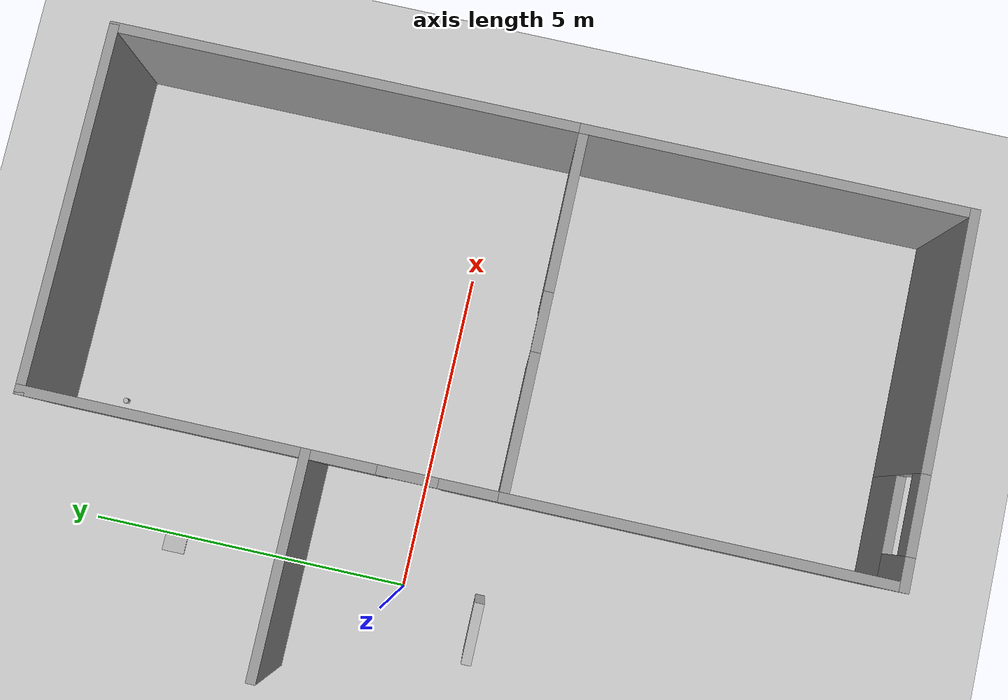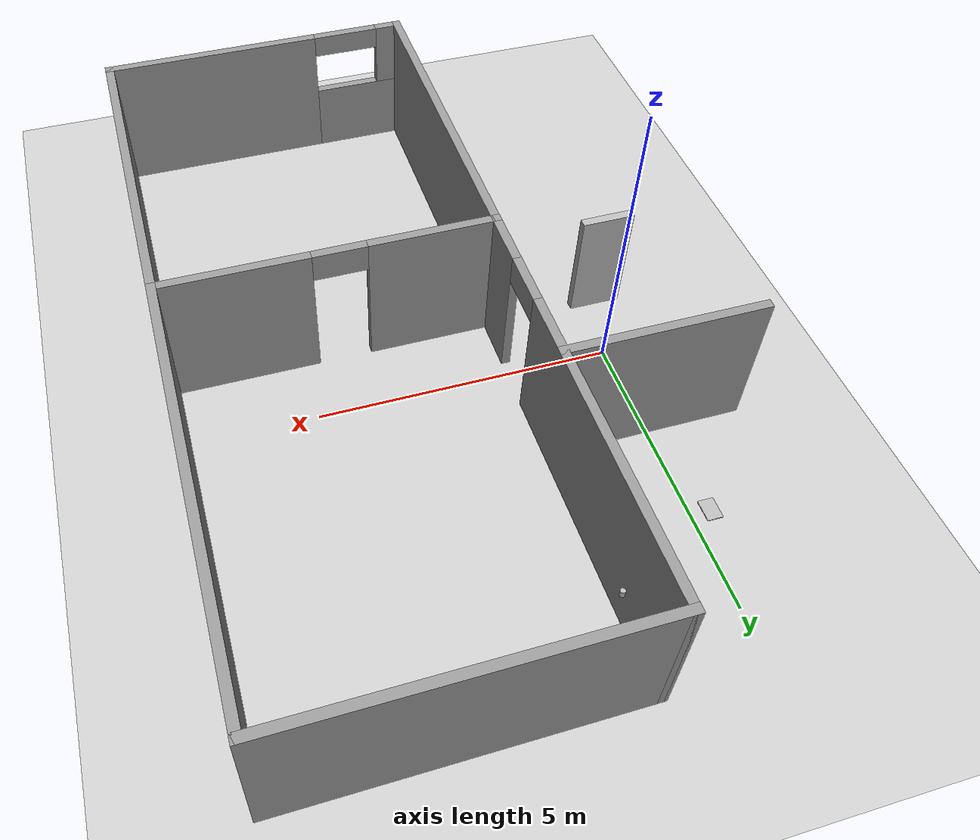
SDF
<sdf version="1.6">
 <world name="default">
  <model name="ground_plane">
   <static>1</static>
   <link name="link">
    <collision name="collision">
     <geometry><plane><normal>0 0 1</normal><size>100 100</size></plane></geometry>
     <surface><friction><ode><mu>100</mu><mu2>50</mu2></ode></friction></surface>
    </collision>
    <visual name="visual">
     <cast_shadows>0</cast_shadows>
     <geometry><plane><normal>0 0 1</normal><size>100 100</size></plane></geometry>
     <material>
      <script><uri>file://media/materials/scripts/gazebo.material</uri><name>Gazebo/Grey</name></script>
     </material>
    </visual>
   </link>
  </model>
  <model name="House">
   <link name="Wall_100">
    <pose>0.885 2.25 0 0 -0 0</pose>
    <visual name="Wall_100_Visual">
     <pose>0 0 1.25 0 -0 0</pose>
     <geometry><box><size>3.38 0.15 2.5</size></box></geometry>
     <material>
      <script><uri>file://media/materials/scripts/gazebo.material</uri><name>Gazebo/Grey</name></script>
      <ambient>1 1 1 1</ambient>
      <shader type="pixel"/>
      <diffuse>0.7 0.7 0.7 1</diffuse>
      <specular>0.01 0.01 0.01 1</specular>
      <emissive>0 0 0 1</emissive>
     </material>
     <meta><layer>0</layer></meta>
    </visual>
    <collision name="Wall_100_Collision">
     <pose>0 0 1.25 0 -0 0</pose>
     <geometry><box><size>3.38 0.15 2.5</size></box></geometry>
     <surface>
      <friction>
       <ode><mu>1</mu><mu2>1</mu2><fdir1>0 0 0</fdir1><slip1>0</slip1><slip2>0</slip2></ode>
       <torsional>
        <coefficient>1</coefficient>
        <patch_radius>0</patch_radius>
        <surface_radius>0</surface_radius>
        <use_patch_radius>1</use_patch_radius>
        <ode><slip>0</slip></ode>
       </torsional>
      </friction>
      <bounce><restitution_coefficient>0</restitution_coefficient><threshold>1e+06</threshold></bounce>
      <contact>
       <collide_without_contact>0</collide_without_contact>
       <collide_without_contact_bitmask>1</collide_without_contact_bitmask>
       <collide_bitmask>1</collide_bitmask>
       <ode>
        <soft_cfm>0</soft_cfm>
        <soft_erp>0.2</soft_erp>
        <kp>1e+13</kp>
        <kd>1</kd>
        <max_vel>0.01</max_vel>
        <min_depth>0</min_depth>
       </ode>
       <bullet>
        <split_impulse>1</split_impulse>
        <split_impulse_penetration_threshold>-0.01</split_impulse_penetration_threshold>
        <soft_cfm>0</soft_cfm>
        <soft_erp>0.2</soft_erp>
        <kp>1e+13</kp>
        <kd>1</kd>
       </bullet>
      </contact>
     </surface>
    </collision>
   </link>
   <link name="Wall_79">
    <pose>5.25 6.45 0 0 -0 0</pose>
    <visual name="Wall_79_Visual">
     <pose>0 0 1.25 0 -0 0</pose>
     <geometry><box><size>5.65 0.15 2.5</size></box></geometry>
     <material>
      <script><uri>file://media/materials/scripts/gazebo.material</uri><name>Gazebo/Grey</name></script>
      <ambient>1 1 1 1</ambient>
      <shader type="pixel"/>
      <diffuse>0.7 0.7 0.7 1</diffuse>
      <specular>0.01 0.01 0.01 1</specular>
      <emissive>0 0 0 1</emissive>
     </material>
     <meta><layer>0</layer></meta>
    </visual>
    <collision name="Wall_79_Collision">
     <pose>0 0 1.25 0 -0 0</pose>
     <geometry><box><size>5.65 0.15 2.5</size></box></geometry>
     <surface>
      <friction>
       <ode><mu>1</mu><mu2>1</mu2><fdir1>0 0 0</fdir1><slip1>0</slip1><slip2>0</slip2></ode>
       <torsional>
        <coefficient>1</coefficient>
        <patch_radius>0</patch_radius>
        <surface_radius>0</surface_radius>
        <use_patch_radius>1</use_patch_radius>
        <ode><slip>0</slip></ode>
       </torsional>
      </friction>
      <bounce><restitution_coefficient>0</restitution_coefficient><threshold>1e+06</threshold></bounce>
      <contact>
       <collide_without_contact>0</collide_without_contact>
       <collide_without_contact_bitmask>1</collide_without_contact_bitmask>
       <collide_bitmask>1</collide_bitmask>
       <ode>
        <soft_cfm>0</soft_cfm>
        <soft_erp>0.2</soft_erp>
        <kp>1e+13</kp>
        <kd>1</kd>
        <max_vel>0.01</max_vel>
        <min_depth>0</min_depth>
       </ode>
       <bullet>
        <split_impulse>1</split_impulse>
        <split_impulse_penetration_threshold>-0.01</split_impulse_penetration_threshold>
        <soft_cfm>0</soft_cfm>
        <soft_erp>0.2</soft_erp>
        <kp>1e+13</kp>
        <kd>1</kd>
       </bullet>
      </contact>
     </surface>
    </collision>
   </link>
   <link name="Wall_81">
    <pose>8 2.9 0 0 0 -1.5708</pose>
    <visual name="Wall_81_Visual">
     <pose>0 0 1.25 0 -0 0</pose>
     <geometry><box><size>7.25 0.15 2.5</size></box></geometry>
     <material>
      <script><uri>file://media/materials/scripts/gazebo.material</uri><name>Gazebo/Grey</name></script>
      <ambient>1 1 1 1</ambient>
      <shader type="pixel"/>
      <diffuse>0.7 0.7 0.7 1</diffuse>
      <specular>0.01 0.01 0.01 1</specular>
      <emissive>0 0 0 1</emissive>
     </material>
     <meta><layer>0</layer></meta>
    </visual>
    <collision name="Wall_81_Collision">
     <pose>0 0 1.25 0 -0 0</pose>
     <geometry><box><size>7.25 0.15 2.5</size></box></geometry>
     <surface>
      <friction>
       <ode><mu>1</mu><mu2>1</mu2><fdir1>0 0 0</fdir1><slip1>0</slip1><slip2>0</slip2></ode>
       <torsional>
        <coefficient>1</coefficient>
        <patch_radius>0</patch_radius>
        <surface_radius>0</surface_radius>
        <use_patch_radius>1</use_patch_radius>
        <ode><slip>0</slip></ode>
       </torsional>
      </friction>
      <bounce><restitution_coefficient>0</restitution_coefficient><threshold>1e+06</threshold></bounce>
      <contact>
       <collide_without_contact>0</collide_without_contact>
       <collide_without_contact_bitmask>1</collide_without_contact_bitmask>
       <collide_bitmask>1</collide_bitmask>
       <ode>
        <soft_cfm>0</soft_cfm>
        <soft_erp>0.2</soft_erp>
        <kp>1e+13</kp>
        <kd>1</kd>
        <max_vel>0.01</max_vel>
        <min_depth>0</min_depth>
       </ode>
       <bullet>
        <split_impulse>1</split_impulse>
        <split_impulse_penetration_threshold>-0.01</split_impulse_penetration_threshold>
        <soft_cfm>0</soft_cfm>
        <soft_erp>0.2</soft_erp>
        <kp>1e+13</kp>
        <kd>1</kd>
       </bullet>
      </contact>
     </surface>
    </collision>
   </link>
   <link name="Wall_83">
    <pose>8 -3.55 0 0 0 -1.5708</pose>
    <visual name="Wall_83_Visual">
     <pose>0 0 1.25 0 -0 0</pose>
     <geometry><box><size>5.95 0.15 2.5</size></box></geometry>
     <material>
      <script><uri>file://media/materials/scripts/gazebo.material</uri><name>Gazebo/Grey</name></script>
      <ambient>1 1 1 1</ambient>
      <shader type="pixel"/>
      <diffuse>0.7 0.7 0.7 1</diffuse>
      <specular>0.01 0.01 0.01 1</specular>
      <emissive>0 0 0 1</emissive>
     </material>
     <meta><layer>0</layer></meta>
    </visual>
    <collision name="Wall_83_Collision">
     <pose>0 0 1.25 0 -0 0</pose>
     <geometry><box><size>5.95 0.15 2.5</size></box></geometry>
     <surface>
      <friction>
       <ode><mu>1</mu><mu2>1</mu2><fdir1>0 0 0</fdir1><slip1>0</slip1><slip2>0</slip2></ode>
       <torsional>
        <coefficient>1</coefficient>
        <patch_radius>0</patch_radius>
        <surface_radius>0</surface_radius>
        <use_patch_radius>1</use_patch_radius>
        <ode><slip>0</slip></ode>
       </torsional>
      </friction>
      <bounce><restitution_coefficient>0</restitution_coefficient><threshold>1e+06</threshold></bounce>
      <contact>
       <collide_without_contact>0</collide_without_contact>
       <collide_without_contact_bitmask>1</collide_without_contact_bitmask>
       <collide_bitmask>1</collide_bitmask>
       <ode>
        <soft_cfm>0</soft_cfm>
        <soft_erp>0.2</soft_erp>
        <kp>1e+13</kp>
        <kd>1</kd>
        <max_vel>0.01</max_vel>
        <min_depth>0</min_depth>
       </ode>
       <bullet>
        <split_impulse>1</split_impulse>
        <split_impulse_penetration_threshold>-0.01</split_impulse_penetration_threshold>
        <soft_cfm>0</soft_cfm>
        <soft_erp>0.2</soft_erp>
        <kp>1e+13</kp>
        <kd>1</kd>
       </bullet>
      </contact>
     </surface>
    </collision>
   </link>
   <link name="Wall_85">
    <pose>5.25 -6.45 0 0 -0 3.14159</pose>
    <visual name="Wall_85_Visual_3">
     <pose>1.71326 0 2.3 0 -0 0</pose>
     <geometry><box><size>1.2 0.15 0.4</size></box></geometry>
     <material>
      <script><uri>file://media/materials/scripts/gazebo.material</uri><name>Gazebo/Grey</name></script>
      <ambient>1 1 1 1</ambient>
      <shader type="pixel"/>
      <diffuse>0.7 0.7 0.7 1</diffuse>
      <specular>0.01 0.01 0.01 1</specular>
      <emissive>0 0 0 1</emissive>
     </material>
     <meta><layer>0</layer></meta>
    </visual>
    <visual name="Wall_85_Visual_0">
     <pose>-0.855868 0 1.25 0 -0 0</pose>
     <geometry><box><size>3.93826 0.15 2.5</size></box></geometry>
     <material>
      <script><uri>file://media/materials/scripts/gazebo.material</uri><name>Gazebo/Grey</name></script>
      <ambient>1 1 1 1</ambient>
      <shader type="pixel"/>
      <diffuse>0.7 0.7 0.7 1</diffuse>
      <specular>0.01 0.01 0.01 1</specular>
      <emissive>0 0 0 1</emissive>
     </material>
     <meta><layer>0</layer></meta>
    </visual>
    <visual name="Wall_85_Visual_1">
     <pose>1.96913 0 0.65 0 -0 0</pose>
     <geometry><box><size>1.71174 0.15 1.3</size></box></geometry>
     <material>
      <script><uri>file://media/materials/scripts/gazebo.material</uri><name>Gazebo/Grey</name></script>
      <ambient>1 1 1 1</ambient>
      <shader type="pixel"/>
      <diffuse>0.7 0.7 0.7 1</diffuse>
      <specular>0.01 0.01 0.01 1</specular>
      <emissive>0 0 0 1</emissive>
     </material>
     <meta><layer>0</layer></meta>
    </visual>
    <visual name="Wall_85_Visual_2">
     <pose>2.56913 0 1.9 0 -0 0</pose>
     <geometry><box><size>0.511736 0.15 1.2</size></box></geometry>
     <material>
      <script><uri>file://media/materials/scripts/gazebo.material</uri><name>Gazebo/Grey</name></script>
      <ambient>1 1 1 1</ambient>
      <shader type="pixel"/>
      <diffuse>0.7 0.7 0.7 1</diffuse>
      <specular>0.01 0.01 0.01 1</specular>
      <emissive>0 0 0 1</emissive>
     </material>
     <meta><layer>0</layer></meta>
    </visual>
    <collision name="Wall_85_Collision_0">
     <pose>-0.855868 0 1.25 0 -0 0</pose>
     <geometry><box><size>3.93826 0.15 2.5</size></box></geometry>
     <surface>
      <friction>
       <ode><mu>1</mu><mu2>1</mu2><fdir1>0 0 0</fdir1><slip1>0</slip1><slip2>0</slip2></ode>
       <torsional>
        <coefficient>1</coefficient>
        <patch_radius>0</patch_radius>
        <surface_radius>0</surface_radius>
        <use_patch_radius>1</use_patch_radius>
        <ode><slip>0</slip></ode>
       </torsional>
      </friction>
      <bounce><restitution_coefficient>0</restitution_coefficient><threshold>1e+06</threshold></bounce>
      <contact>
       <collide_without_contact>0</collide_without_contact>
       <collide_without_contact_bitmask>1</collide_without_contact_bitmask>
       <collide_bitmask>1</collide_bitmask>
       <ode>
        <soft_cfm>0</soft_cfm>
        <soft_erp>0.2</soft_erp>
        <kp>1e+13</kp>
        <kd>1</kd>
        <max_vel>0.01</max_vel>
        <min_depth>0</min_depth>
       </ode>
       <bullet>
        <split_impulse>1</split_impulse>
        <split_impulse_penetration_threshold>-0.01</split_impulse_penetration_threshold>
        <soft_cfm>0</soft_cfm>
        <soft_erp>0.2</soft_erp>
        <kp>1e+13</kp>
        <kd>1</kd>
       </bullet>
      </contact>
     </surface>
    </collision>
    <collision name="Wall_85_Collision_1">
     <pose>1.96913 0 0.65 0 -0 0</pose>
     <geometry><box><size>1.71174 0.15 1.3</size></box></geometry>
     <surface>
      <friction>
       <ode><mu>1</mu><mu2>1</mu2><fdir1>0 0 0</fdir1><slip1>0</slip1><slip2>0</slip2></ode>
       <torsional>
        <coefficient>1</coefficient>
        <patch_radius>0</patch_radius>
        <surface_radius>0</surface_radius>
        <use_patch_radius>1</use_patch_radius>
        <ode><slip>0</slip></ode>
       </torsional>
      </friction>
      <bounce><restitution_coefficient>0</restitution_coefficient><threshold>1e+06</threshold></bounce>
      <contact>
       <collide_without_contact>0</collide_without_contact>
       <collide_without_contact_bitmask>1</collide_without_contact_bitmask>
       <collide_bitmask>1</collide_bitmask>
       <ode>
        <soft_cfm>0</soft_cfm>
        <soft_erp>0.2</soft_erp>
        <kp>1e+13</kp>
        <kd>1</kd>
        <max_vel>0.01</max_vel>
        <min_depth>0</min_depth>
       </ode>
       <bullet>
        <split_impulse>1</split_impulse>
        <split_impulse_penetration_threshold>-0.01</split_impulse_penetration_threshold>
        <soft_cfm>0</soft_cfm>
        <soft_erp>0.2</soft_erp>
        <kp>1e+13</kp>
        <kd>1</kd>
       </bullet>
      </contact>
     </surface>
    </collision>
    <collision name="Wall_85_Collision_2">
     <pose>2.56913 0 1.9 0 -0 0</pose>
     <geometry><box><size>0.511736 0.15 1.2</size></box></geometry>
     <surface>
      <friction>
       <ode><mu>1</mu><mu2>1</mu2><fdir1>0 0 0</fdir1><slip1>0</slip1><slip2>0</slip2></ode>
       <torsional>
        <coefficient>1</coefficient>
        <patch_radius>0</patch_radius>
        <surface_radius>0</surface_radius>
        <use_patch_radius>1</use_patch_radius>
        <ode><slip>0</slip></ode>
       </torsional>
      </friction>
      <bounce><restitution_coefficient>0</restitution_coefficient><threshold>1e+06</threshold></bounce>
      <contact>
       <collide_without_contact>0</collide_without_contact>
       <collide_without_contact_bitmask>1</collide_without_contact_bitmask>
       <collide_bitmask>1</collide_bitmask>
       <ode>
        <soft_cfm>0</soft_cfm>
        <soft_erp>0.2</soft_erp>
        <kp>1e+13</kp>
        <kd>1</kd>
        <max_vel>0.01</max_vel>
        <min_depth>0</min_depth>
       </ode>
       <bullet>
        <split_impulse>1</split_impulse>
        <split_impulse_penetration_threshold>-0.01</split_impulse_penetration_threshold>
        <soft_cfm>0</soft_cfm>
        <soft_erp>0.2</soft_erp>
        <kp>1e+13</kp>
        <kd>1</kd>
       </bullet>
      </contact>
     </surface>
    </collision>
    <collision name="Wall_85_Collision_3">
     <pose>1.71326 0 2.3 0 -0 0</pose>
     <geometry><box><size>1.2 0.15 0.4</size></box></geometry>
     <surface>
      <friction>
       <ode><mu>1</mu><mu2>1</mu2><fdir1>0 0 0</fdir1><slip1>0</slip1><slip2>0</slip2></ode>
       <torsional>
        <coefficient>1</coefficient>
        <patch_radius>0</patch_radius>
        <surface_radius>0</surface_radius>
        <use_patch_radius>1</use_patch_radius>
        <ode><slip>0</slip></ode>
       </torsional>
      </friction>
      <bounce><restitution_coefficient>0</restitution_coefficient><threshold>1e+06</threshold></bounce>
      <contact>
       <collide_without_contact>0</collide_without_contact>
       <collide_without_contact_bitmask>1</collide_without_contact_bitmask>
       <collide_bitmask>1</collide_bitmask>
       <ode>
        <soft_cfm>0</soft_cfm>
        <soft_erp>0.2</soft_erp>
        <kp>1e+13</kp>
        <kd>1</kd>
        <max_vel>0.01</max_vel>
        <min_depth>0</min_depth>
       </ode>
       <bullet>
        <split_impulse>1</split_impulse>
        <split_impulse_penetration_threshold>-0.01</split_impulse_penetration_threshold>
        <soft_cfm>0</soft_cfm>
        <soft_erp>0.2</soft_erp>
        <kp>1e+13</kp>
        <kd>1</kd>
       </bullet>
      </contact>
     </surface>
    </collision>
   </link>
   <link name="Wall_87">
    <pose>2.5 -3.55 0 0 -0 1.5708</pose>
    <visual name="Wall_87_Visual">
     <pose>0 0 1.25 0 -0 0</pose>
     <geometry><box><size>5.95 0.15 2.5</size></box></geometry>
     <material>
      <script><uri>file://media/materials/scripts/gazebo.material</uri><name>Gazebo/Grey</name></script>
      <ambient>1 1 1 1</ambient>
      <shader type="pixel"/>
      <diffuse>0.7 0.7 0.7 1</diffuse>
      <specular>0.01 0.01 0.01 1</specular>
      <emissive>0 0 0 1</emissive>
     </material>
     <meta><layer>0</layer></meta>
    </visual>
    <collision name="Wall_87_Collision">
     <pose>0 0 1.25 0 -0 0</pose>
     <geometry><box><size>5.95 0.15 2.5</size></box></geometry>
     <surface>
      <friction>
       <ode><mu>1</mu><mu2>1</mu2><fdir1>0 0 0</fdir1><slip1>0</slip1><slip2>0</slip2></ode>
       <torsional>
        <coefficient>1</coefficient>
        <patch_radius>0</patch_radius>
        <surface_radius>0</surface_radius>
        <use_patch_radius>1</use_patch_radius>
        <ode><slip>0</slip></ode>
       </torsional>
      </friction>
      <bounce><restitution_coefficient>0</restitution_coefficient><threshold>1e+06</threshold></bounce>
      <contact>
       <collide_without_contact>0</collide_without_contact>
       <collide_without_contact_bitmask>1</collide_without_contact_bitmask>
       <collide_bitmask>1</collide_bitmask>
       <ode>
        <soft_cfm>0</soft_cfm>
        <soft_erp>0.2</soft_erp>
        <kp>1e+13</kp>
        <kd>1</kd>
        <max_vel>0.01</max_vel>
        <min_depth>0</min_depth>
       </ode>
       <bullet>
        <split_impulse>1</split_impulse>
        <split_impulse_penetration_threshold>-0.01</split_impulse_penetration_threshold>
        <soft_cfm>0</soft_cfm>
        <soft_erp>0.2</soft_erp>
        <kp>1e+13</kp>
        <kd>1</kd>
       </bullet>
      </contact>
     </surface>
    </collision>
   </link>
   <link name="Wall_89">
    <pose>5.25 -0.65 0 0 -0 0</pose>
    <visual name="Wall_89_Visual_0">
     <pose>-1.72046 0 1.25 0 -0 0</pose>
     <geometry><box><size>2.20908 0.15 2.5</size></box></geometry>
     <material>
      <script><uri>file://media/materials/scripts/gazebo.material</uri><name>Gazebo/Grey</name></script>
      <ambient>1 1 1 1</ambient>
      <shader type="pixel"/>
      <diffuse>0.7 0.7 0.7 1</diffuse>
      <specular>0.01 0.01 0.01 1</specular>
      <emissive>0 0 0 1</emissive>
     </material>
     <meta><layer>0</layer></meta>
    </visual>
    <visual name="Wall_89_Visual_1">
     <pose>1.55454 0 1.25 0 -0 0</pose>
     <geometry><box><size>2.54092 0.15 2.5</size></box></geometry>
     <material>
      <script><uri>file://media/materials/scripts/gazebo.material</uri><name>Gazebo/Grey</name></script>
      <ambient>1 1 1 1</ambient>
      <shader type="pixel"/>
      <diffuse>0.7 0.7 0.7 1</diffuse>
      <specular>0.01 0.01 0.01 1</specular>
      <emissive>0 0 0 1</emissive>
     </material>
     <meta><layer>0</layer></meta>
    </visual>
    <visual name="Wall_89_Visual_2">
     <pose>-0.165924 0 2.25 0 -0 0</pose>
     <geometry><box><size>0.9 0.15 0.5</size></box></geometry>
     <material>
      <script><uri>file://media/materials/scripts/gazebo.material</uri><name>Gazebo/Grey</name></script>
      <ambient>1 1 1 1</ambient>
      <shader type="pixel"/>
      <diffuse>0.7 0.7 0.7 1</diffuse>
      <specular>0.01 0.01 0.01 1</specular>
      <emissive>0 0 0 1</emissive>
     </material>
     <meta><layer>0</layer></meta>
    </visual>
    <collision name="Wall_89_Collision_0">
     <pose>-1.72046 0 1.25 0 -0 0</pose>
     <geometry><box><size>2.20908 0.15 2.5</size></box></geometry>
     <surface>
      <friction>
       <ode><mu>1</mu><mu2>1</mu2><fdir1>0 0 0</fdir1><slip1>0</slip1><slip2>0</slip2></ode>
       <torsional>
        <coefficient>1</coefficient>
        <patch_radius>0</patch_radius>
        <surface_radius>0</surface_radius>
        <use_patch_radius>1</use_patch_radius>
        <ode><slip>0</slip></ode>
       </torsional>
      </friction>
      <bounce><restitution_coefficient>0</restitution_coefficient><threshold>1e+06</threshold></bounce>
      <contact>
       <collide_without_contact>0</collide_without_contact>
       <collide_without_contact_bitmask>1</collide_without_contact_bitmask>
       <collide_bitmask>1</collide_bitmask>
       <ode>
        <soft_cfm>0</soft_cfm>
        <soft_erp>0.2</soft_erp>
        <kp>1e+13</kp>
        <kd>1</kd>
        <max_vel>0.01</max_vel>
        <min_depth>0</min_depth>
       </ode>
       <bullet>
        <split_impulse>1</split_impulse>
        <split_impulse_penetration_threshold>-0.01</split_impulse_penetration_threshold>
        <soft_cfm>0</soft_cfm>
        <soft_erp>0.2</soft_erp>
        <kp>1e+13</kp>
        <kd>1</kd>
       </bullet>
      </contact>
     </surface>
    </collision>
    <collision name="Wall_89_Collision_1">
     <pose>1.55454 0 1.25 0 -0 0</pose>
     <geometry><box><size>2.54092 0.15 2.5</size></box></geometry>
     <surface>
      <friction>
       <ode><mu>1</mu><mu2>1</mu2><fdir1>0 0 0</fdir1><slip1>0</slip1><slip2>0</slip2></ode>
       <torsional>
        <coefficient>1</coefficient>
        <patch_radius>0</patch_radius>
        <surface_radius>0</surface_radius>
        <use_patch_radius>1</use_patch_radius>
        <ode><slip>0</slip></ode>
       </torsional>
      </friction>
      <bounce><restitution_coefficient>0</restitution_coefficient><threshold>1e+06</threshold></bounce>
      <contact>
       <collide_without_contact>0</collide_without_contact>
       <collide_without_contact_bitmask>1</collide_without_contact_bitmask>
       <collide_bitmask>1</collide_bitmask>
       <ode>
        <soft_cfm>0</soft_cfm>
        <soft_erp>0.2</soft_erp>
        <kp>1e+13</kp>
        <kd>1</kd>
        <max_vel>0.01</max_vel>
        <min_depth>0</min_depth>
       </ode>
       <bullet>
        <split_impulse>1</split_impulse>
        <split_impulse_penetration_threshold>-0.01</split_impulse_penetration_threshold>
        <soft_cfm>0</soft_cfm>
        <soft_erp>0.2</soft_erp>
        <kp>1e+13</kp>
        <kd>1</kd>
       </bullet>
      </contact>
     </surface>
    </collision>
    <collision name="Wall_89_Collision_2">
     <pose>-0.165924 0 2.25 0 -0 0</pose>
     <geometry><box><size>0.9 0.15 0.5</size></box></geometry>
     <surface>
      <friction>
       <ode><mu>1</mu><mu2>1</mu2><fdir1>0 0 0</fdir1><slip1>0</slip1><slip2>0</slip2></ode>
       <torsional>
        <coefficient>1</coefficient>
        <patch_radius>0</patch_radius>
        <surface_radius>0</surface_radius>
        <use_patch_radius>1</use_patch_radius>
        <ode><slip>0</slip></ode>
       </torsional>
      </friction>
      <bounce><restitution_coefficient>0</restitution_coefficient><threshold>1e+06</threshold></bounce>
      <contact>
       <collide_without_contact>0</collide_without_contact>
       <collide_without_contact_bitmask>1</collide_without_contact_bitmask>
       <collide_bitmask>1</collide_bitmask>
       <ode>
        <soft_cfm>0</soft_cfm>
        <soft_erp>0.2</soft_erp>
        <kp>1e+13</kp>
        <kd>1</kd>
        <max_vel>0.01</max_vel>
        <min_depth>0</min_depth>
       </ode>
       <bullet>
        <split_impulse>1</split_impulse>
        <split_impulse_penetration_threshold>-0.01</split_impulse_penetration_threshold>
        <soft_cfm>0</soft_cfm>
        <soft_erp>0.2</soft_erp>
        <kp>1e+13</kp>
        <kd>1</kd>
       </bullet>
      </contact>
     </surface>
    </collision>
   </link>
   <link name="Wall_91">
    <pose>2.5 2.9 0 0 -0 1.5708</pose>
    <visual name="Wall_91_Visual_0">
     <pose>-3.11155 0 1.25 0 -0 0</pose>
     <geometry><box><size>1.0269 0.15 2.5</size></box></geometry>
     <material>
      <script><uri>file://media/materials/scripts/gazebo.material</uri><name>Gazebo/Grey</name></script>
      <ambient>1 1 1 1</ambient>
      <shader type="pixel"/>
      <diffuse>0.7 0.7 0.7 1</diffuse>
      <specular>0.01 0.01 0.01 1</specular>
      <emissive>0 0 0 1</emissive>
     </material>
     <meta><layer>0</layer></meta>
    </visual>
    <visual name="Wall_91_Visual_1">
     <pose>0.96345 0 1.25 0 -0 0</pose>
     <geometry><box><size>5.3231 0.15 2.5</size></box></geometry>
     <material>
      <script><uri>file://media/materials/scripts/gazebo.material</uri><name>Gazebo/Grey</name></script>
      <ambient>1 1 1 1</ambient>
      <shader type="pixel"/>
      <diffuse>0.7 0.7 0.7 1</diffuse>
      <specular>0.01 0.01 0.01 1</specular>
      <emissive>0 0 0 1</emissive>
     </material>
     <meta><layer>0</layer></meta>
    </visual>
    <visual name="Wall_91_Visual_2">
     <pose>-2.1481 0 2.25 0 -0 0</pose>
     <geometry><box><size>0.9 0.15 0.5</size></box></geometry>
     <material>
      <script><uri>file://media/materials/scripts/gazebo.material</uri><name>Gazebo/Grey</name></script>
      <ambient>1 1 1 1</ambient>
      <shader type="pixel"/>
      <diffuse>0.7 0.7 0.7 1</diffuse>
      <specular>0.01 0.01 0.01 1</specular>
      <emissive>0 0 0 1</emissive>
     </material>
     <meta><layer>0</layer></meta>
    </visual>
    <collision name="Wall_91_Collision_0">
     <pose>-3.11155 0 1.25 0 -0 0</pose>
     <geometry><box><size>1.0269 0.15 2.5</size></box></geometry>
     <surface>
      <friction>
       <ode><mu>1</mu><mu2>1</mu2><fdir1>0 0 0</fdir1><slip1>0</slip1><slip2>0</slip2></ode>
       <torsional>
        <coefficient>1</coefficient>
        <patch_radius>0</patch_radius>
        <surface_radius>0</surface_radius>
        <use_patch_radius>1</use_patch_radius>
        <ode><slip>0</slip></ode>
       </torsional>
      </friction>
      <bounce><restitution_coefficient>0</restitution_coefficient><threshold>1e+06</threshold></bounce>
      <contact>
       <collide_without_contact>0</collide_without_contact>
       <collide_without_contact_bitmask>1</collide_without_contact_bitmask>
       <collide_bitmask>1</collide_bitmask>
       <ode>
        <soft_cfm>0</soft_cfm>
        <soft_erp>0.2</soft_erp>
        <kp>1e+13</kp>
        <kd>1</kd>
        <max_vel>0.01</max_vel>
        <min_depth>0</min_depth>
       </ode>
       <bullet>
        <split_impulse>1</split_impulse>
        <split_impulse_penetration_threshold>-0.01</split_impulse_penetration_threshold>
        <soft_cfm>0</soft_cfm>
        <soft_erp>0.2</soft_erp>
        <kp>1e+13</kp>
        <kd>1</kd>
       </bullet>
      </contact>
     </surface>
    </collision>
    <collision name="Wall_91_Collision_2">
     <pose>-2.1481 0 2.25 0 -0 0</pose>
     <geometry><box><size>0.9 0.15 0.5</size></box></geometry>
     <surface>
      <friction>
       <ode><mu>1</mu><mu2>1</mu2><fdir1>0 0 0</fdir1><slip1>0</slip1><slip2>0</slip2></ode>
       <torsional>
        <coefficient>1</coefficient>
        <patch_radius>0</patch_radius>
        <surface_radius>0</surface_radius>
        <use_patch_radius>1</use_patch_radius>
        <ode><slip>0</slip></ode>
       </torsional>
      </friction>
      <bounce><restitution_coefficient>0</restitution_coefficient><threshold>1e+06</threshold></bounce>
      <contact>
       <collide_without_contact>0</collide_without_contact>
       <collide_without_contact_bitmask>1</collide_without_contact_bitmask>
       <collide_bitmask>1</collide_bitmask>
       <ode>
        <soft_cfm>0</soft_cfm>
        <soft_erp>0.2</soft_erp>
        <kp>1e+13</kp>
        <kd>1</kd>
        <max_vel>0.01</max_vel>
        <min_depth>0</min_depth>
       </ode>
       <bullet>
        <split_impulse>1</split_impulse>
        <split_impulse_penetration_threshold>-0.01</split_impulse_penetration_threshold>
        <soft_cfm>0</soft_cfm>
        <soft_erp>0.2</soft_erp>
        <kp>1e+13</kp>
        <kd>1</kd>
       </bullet>
      </contact>
     </surface>
    </collision>
    <collision name="Wall_91_Collision_1">
     <pose>0.96345 0 1.25 0 -0 0</pose>
     <geometry><box><size>5.3231 0.15 2.5</size></box></geometry>
     <surface>
      <friction>
       <ode><mu>1</mu><mu2>1</mu2><fdir1>0 0 0</fdir1><slip1>0</slip1><slip2>0</slip2></ode>
       <torsional>
        <coefficient>1</coefficient>
        <patch_radius>0</patch_radius>
        <surface_radius>0</surface_radius>
        <use_patch_radius>1</use_patch_radius>
        <ode><slip>0</slip></ode>
       </torsional>
      </friction>
      <bounce><restitution_coefficient>0</restitution_coefficient><threshold>1e+06</threshold></bounce>
      <contact>
       <collide_without_contact>0</collide_without_contact>
       <collide_without_contact_bitmask>1</collide_without_contact_bitmask>
       <collide_bitmask>1</collide_bitmask>
       <ode>
        <soft_cfm>0</soft_cfm>
        <soft_erp>0.2</soft_erp>
        <kp>1e+13</kp>
        <kd>1</kd>
        <max_vel>0.01</max_vel>
        <min_depth>0</min_depth>
       </ode>
       <bullet>
        <split_impulse>1</split_impulse>
        <split_impulse_penetration_threshold>-0.01</split_impulse_penetration_threshold>
        <soft_cfm>0</soft_cfm>
        <soft_erp>0.2</soft_erp>
        <kp>1e+13</kp>
        <kd>1</kd>
       </bullet>
      </contact>
     </surface>
    </collision>
   </link>
   <static>1</static>
   <pose>-0.825981 -0.56573 0 0 -0 0</pose>
  </model>
  <model name="newspaper_1">
   <link name="link_0">
    <visual name="visual">
     <geometry><box><size>0.35 0.25 0.02</size></box></geometry>
     <material>
      <script>
       <uri>model://newspaper_1/materials/scripts</uri>
       <uri>model://newspaper_1/materials/textures</uri>
       <name>newspaper_1</name>
      </script>
     </material>
    </visual>
    <collision name="collision"><geometry><box><size>0.35 0.25 0.02</size></box></geometry></collision>
   </link>
   <static>1</static>
   <pose>-0.117815 3.61344 0.455189 0 -0 1.57</pose>
  </model>
  <model name="door">
   <link name="link_0">
    <visual name="visual">
     <pose>0 0 1 0 -0 0</pose>
     <geometry><box><size>0.9 0.15 2</size></box></geometry>
     <material>
      <script>
       <uri>model://door/materials/scripts</uri>
       <uri>model://door/materials/textures</uri>
       <name>door</name>
      </script>
     </material>
    </visual>
    <collision name="collision">
     <pose>0 0 1 0 -0 0</pose>
     <geometry><box><size>0.9 0.15 2</size></box></geometry>
    </collision>
   </link>
   <static>1</static>
   <pose>-0.322221 -1.21022 0 0 -0 0</pose>
  </model>
  <model name="coffee_box">
   <link name="link_0">
    <visual name="visual">
     <pose>0 0 0.06 0 -0 0</pose>
     <geometry><cylinder><radius>0.04</radius><length>0.12</length></cylinder></geometry>
     <material>
      <script>
       <uri>model://coffee_box/materials/scripts</uri>
       <uri>model://coffee_box/materials/textures</uri>
       <name>coffee_pat</name>
      </script>
     </material>
    </visual>
    <collision name="collision">
     <geometry><cylinder><radius>0.04</radius><length>0.12</length></cylinder></geometry>
    </collision>
   </link>
   <static>1</static>
   <pose>1.88034 4.75265 0.920562 0 -0 0</pose>
  </model>
 </world>
</sdf>
